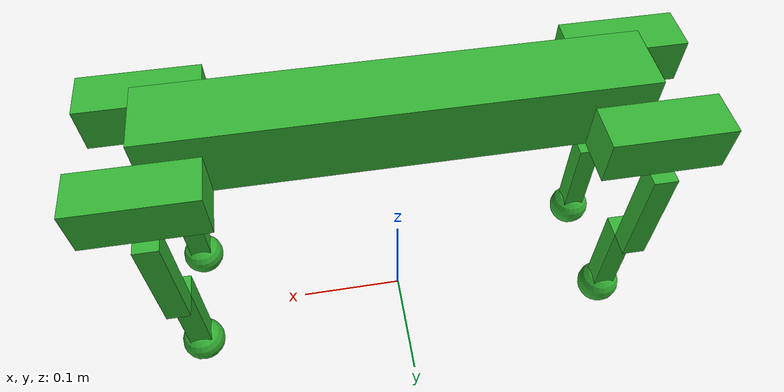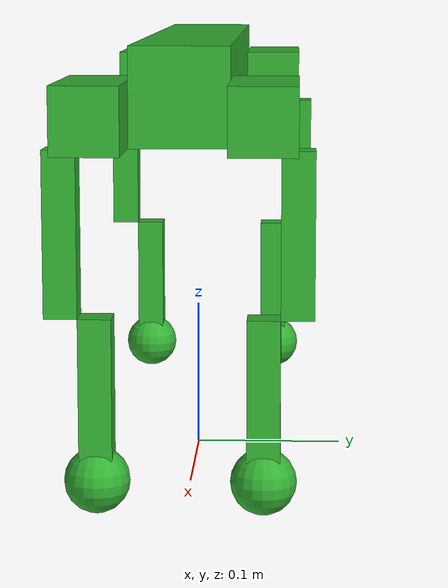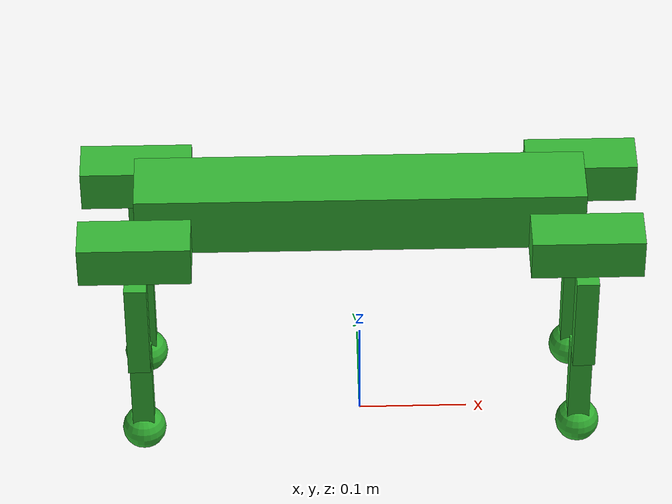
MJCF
<mujoco model="dog">
  <compiler angle="degree"/>
  <option timestep="0.001" gravity="0 0 -9.81"/>

  <default>
    <equality solref="0.005 1" />
    <geom type="box" size="0.05 0.02 0.02" density="500" rgba="0.2 0.7 0.2 1"/>
    <joint limited="true" range="-300 300" damping="0.2" stiffness="5"/>
    <motor ctrllimited="true" ctrlrange="-3 3"/>
  </default>

  <worldbody>
    <!-- main body -->
    <body name="main_body" pos="0 0 0.26">
      <freejoint name="main_free"/>
      <geom name="torso" type="box" size="0.20 0.03 0.03" pos="0.0 0 0"/>

      <!-- Leg 1 : front left -->
      <body name="fl_shoulder" pos="0.20 0.05 -0.01">
        <joint name="fl_shoulder_yaw" type="hinge" axis="1 0 0" pos="0.0 0 0"/>
        <geom name="fl_shoulder_geom" type="box" size="0.05 0.02 0.02" pos="0.0 0.0 0.0"/>
        <body name="fl_elbow" pos="0.0 0.02 -0.07">
          <joint name="fl_elbow_pitch" type="hinge" axis="0 1 0" pos="0.0 0 0.05"
                 limited="true" range="10 50"/>
          <geom name="fl_elbow_geom" type="box" size="0.01 0.01 0.05" pos="0.0 0.0 0.0"/>
          <body name="fl_arm" pos="0.0 -0.02 -0.10">
            <joint name="fl_arm_pitch" type="hinge" axis="0 1 0" pos="0.0 0 0.05"
                   range="-100 -60" damping="0" stiffness="1"/>
            <geom name="fl_arm_geom" type="box" size="0.01 0.01 0.05" pos="0 0 0"/>
            <body name="fl_foot" pos="0.0 0.0 -0.05">
              <geom name="fl_foot_geom" type="sphere" size="0.02" pos="0 0 0"/>
            </body>
          </body>
        </body>
      </body>

      <!-- Leg 2 : back left -->
      <body name="bl_shoulder" pos="-0.20 0.05 -0.01">
        <joint name="bl_shoulder_yaw" type="hinge" axis="1 0 0" pos="0.0 0 0"/>
        <geom name="bl_shoulder_geom" type="box" size="0.05 0.02 0.02" pos="0 0 0"/>
        <body name="bl_elbow" pos="0.0 0.02 -0.07">
          <joint name="bl_elbow_pitch" type="hinge" axis="0 1 0" pos="0.0 0 0.05"
                 limited="true" range="10 50"/>
          <geom name="bl_elbow_geom" type="box" size="0.01 0.01 0.05" pos="0 0 0"/>
          <body name="bl_arm" pos="0.0 -0.02 -0.10">
            <joint name="bl_arm_pitch" type="hinge" axis="0 1 0" pos="0.0 0 0.05"
                   range="-100 -60" damping="0" stiffness="1"/>
            <geom name="bl_arm_geom" type="box" size="0.01 0.01 0.05" pos="0 0 0"/>
            <body name="bl_foot" pos="0.0 0.0 -0.05">
              <geom name="bl_foot_geom" type="sphere" size="0.02" pos="0 0 0"/>
            </body>
          </body>
        </body>
      </body>

      <!-- Leg 3 : front right -->
      <body name="fr_shoulder" pos="0.20 -0.05 -0.01">
        <joint name="fr_shoulder_yaw" type="hinge" axis="1 0 0" pos="0.0 0 0"/>
        <geom name="fr_shoulder_geom" type="box" size="0.05 0.02 0.02" pos="0 0 0"/>
        <body name="fr_elbow" pos="0.00 -0.02 -0.07">
          <joint name="fr_elbow_pitch" type="hinge" axis="0 1 0" pos="0.0 0 0.05"
                 limited="true" range="10 50"/>
          <geom name="fr_elbow_geom" type="box" size="0.01 0.01 0.05" pos="0 0 0"/>
          <body name="fr_arm" pos="0.0 0.02 -0.10">
            <joint name="fr_arm_pitch" type="hinge" axis="0 1 0" pos="0.0 0 0.05"
                   range="-100 -60" damping="0" stiffness="1"/>
            <geom name="fr_arm_geom" type="box" size="0.01 0.01 0.05" pos="0 0 0"/>
            <body name="fr_foot" pos="0.0 0.0 -0.05">
              <geom name="fr_foot_geom" type="sphere" size="0.02" pos="0 0 0"/>
            </body>
          </body>
        </body>
      </body>

      <!-- Leg 4 : back right -->
      <body name="br_shoulder" pos="-0.20 -0.05 -0.01">
        <joint name="br_shoulder_yaw" type="hinge" axis="1 0 0" pos="0.0 0 0"/>
        <geom name="br_shoulder_geom" type="box" size="0.05 0.02 0.02" pos="0 0 0"/>
        <body name="br_elbow" pos="0.0 -0.02 -0.07">
          <joint name="br_elbow_pitch" type="hinge" axis="0 1 0" pos="0.0 0 0.05"
                 limited="true" range="10 50"/>
          <geom name="br_elbow_geom" type="box" size="0.01 0.01 0.05" pos="0 0 0"/>
          <body name="br_arm" pos="0.0 0.02 -0.10">
            <joint name="br_arm_pitch" type="hinge" axis="0 1 0" pos="0.0 0 0.05"
                   range="-100 -60" damping="0" stiffness="1"/>
            <geom name="br_arm_geom" type="box" size="0.01 0.01 0.05" pos="0 0 0"/>
            <body name="br_foot" pos="0.0 0.0 -0.05">
              <geom name="br_foot_geom" type="sphere" size="0.02" pos="0 0 0"/>
            </body>
          </body>
        </body>
      </body>
    </body>
  </worldbody>

  <actuator>
    <!-- Front left leg -->
    <motor name="fl_shoulder_motor" joint="fl_shoulder_yaw" forcelimited="true" forcerange="0 20"/>
    <motor name="fl_elbow_motor" joint="fl_elbow_pitch" forcelimited="true" forcerange ="0 20"/>
    <motor name="fl_arm_motor" joint="fl_arm_pitch" forcelimited="true" forcerange="0 20"/>

    <!-- Front right leg -->
    <motor name="fr_shoulder_motor" joint="fr_shoulder_yaw" forcelimited="true" forcerange="0 20"/>
    <motor name="fr_elbow_motor"    joint="fr_elbow_pitch" forcelimited="true" forcerange="0 20"/>
    <motor name="fr_arm_motor"      joint="fr_arm_pitch" forcelimited="true" forcerange="0 20"/>

    <!-- Back left leg -->
    <motor name="bl_shoulder_motor" joint="bl_shoulder_yaw" forcelimited="true" forcerange="0 20"/>
    <motor name="bl_elbow_motor"    joint="bl_elbow_pitch" forcelimited="true" forcerange="0 20"/>
    <motor name="bl_arm_motor"      joint="bl_arm_pitch" forcelimited="true" forcerange="0 20"/>

    <!-- Back right leg -->
    <motor name="br_shoulder_motor" joint="br_shoulder_yaw" forcelimited="true" forcerange="0 20"/>
    <motor name="br_elbow_motor"    joint="br_elbow_pitch" forcelimited="true" forcerange="0 20"/>
    <motor name="br_arm_motor"      joint="br_arm_pitch" forcelimited="true" forcerange="0 20"/>
  </actuator>

  <sensor>
    <jointpos joint="fl_elbow_pitch"/>
    <jointpos joint="fr_elbow_pitch"/>
    <jointpos joint="bl_elbow_pitch"/>
    <jointpos joint="br_elbow_pitch"/>
  </sensor>
</mujoco>
